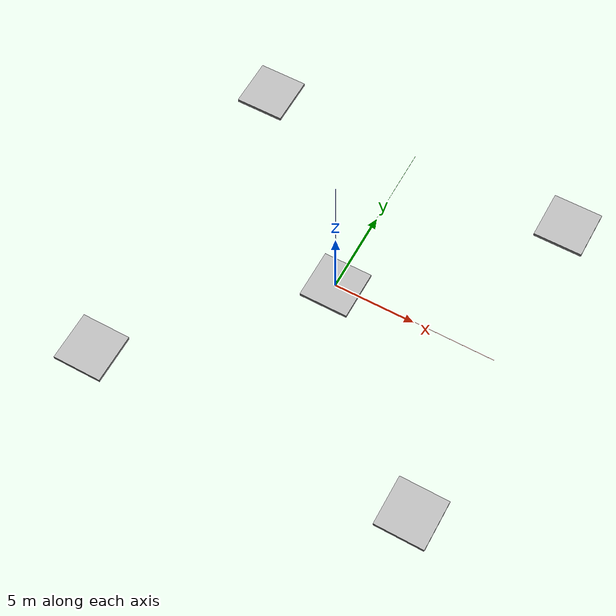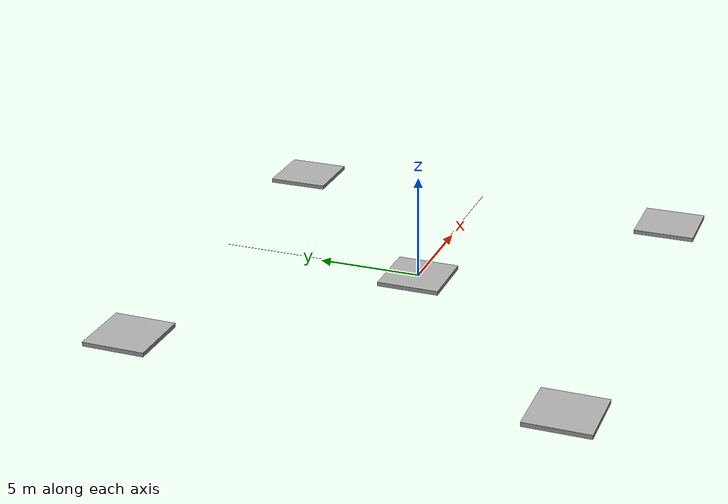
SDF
<sdf version="1.9">
 <world name="delivery_runway">
  <physics name="1ms" type="ignore">
   <max_step_size>0.001</max_step_size>
   <real_time_factor>1.0</real_time_factor>
  </physics>
  <plugin filename="gz-sim-physics-system" name="gz::sim::systems::Physics"/>
  <plugin filename="gz-sim-sensors-system" name="gz::sim::systems::Sensors">
   <render_engine>ogre2</render_engine>
  </plugin>
  <plugin filename="gz-sim-user-commands-system" name="gz::sim::systems::UserCommands"/>
  <plugin filename="gz-sim-scene-broadcaster-system" name="gz::sim::systems::SceneBroadcaster"/>
  <plugin filename="gz-sim-imu-system" name="gz::sim::systems::Imu"/>
  <plugin filename="gz-sim-navsat-system" name="gz::sim::systems::NavSat"/>
  <scene><ambient>1.0 1.0 1.0</ambient><background>0.8 0.8 0.8</background></scene>
  <spherical_coordinates>
   <latitude_deg>-35.363262</latitude_deg>
   <longitude_deg>149.165237</longitude_deg>
   <elevation>584</elevation>
   <heading_deg>0</heading_deg>
   <surface_model>EARTH_WGS84</surface_model>
  </spherical_coordinates>
  <light type="directional" name="sun">
   <pose>0 0 10 0 0 0</pose>
   <diffuse>0.8 0.8 0.8 1</diffuse>
   <specular>0.8 0.8 0.8 1</specular>
   <attenuation>
    <range>1000</range>
    <constant>0.9</constant>
    <linear>0.01</linear>
    <quadratic>0.001</quadratic>
   </attenuation>
   <direction>-0.5 0.1 -0.9</direction>
  </light>
  <model name="axes">
   <static>1</static>
   <link name="link">
    <visual name="r">
     <cast_shadows>0</cast_shadows>
     <pose>5 0 0.1 0 0 0</pose>
     <geometry><box><size>10 0.01 0.01</size></box></geometry>
     <material>
      <ambient>1 0 0 0.8</ambient>
      <diffuse>1 0 0 0.8</diffuse>
      <emissive>1 0 0 0.8</emissive>
      <specular>0.5 0.5 0.5 0.8</specular>
     </material>
    </visual>
    <visual name="g">
     <cast_shadows>0</cast_shadows>
     <pose>0 5 0.1 0 0 0</pose>
     <geometry><box><size>0.01 10 0.01</size></box></geometry>
     <material>
      <ambient>0 1 0 0.8</ambient>
      <diffuse>0 1 0 0.8</diffuse>
      <emissive>0 1 0 0.8</emissive>
      <specular>0.5 0.5 0.5 0.8</specular>
     </material>
    </visual>
    <visual name="b">
     <cast_shadows>0</cast_shadows>
     <pose>0 0 5.1 0 0 0</pose>
     <geometry><box><size>0.01 0.01 10</size></box></geometry>
     <material>
      <ambient>0 0 1 0.8</ambient>
      <diffuse>0 0 1 0.8</diffuse>
      <emissive>0 0 1 0.8</emissive>
      <specular>0.5 0.5 0.5 0.8</specular>
     </material>
    </visual>
    <sensor name="navsat_sensor" type="navsat"><always_on>1</always_on><update_rate>1</update_rate></sensor>
   </link>
  </model>
  <include><uri>model://box_with_image</uri><pose degrees="true">0 0 0 0 0 0</pose></include>
  <include><name>pad1</name><uri>model://box_with_image</uri><pose degrees="true">10 10 0 0 0 0</pose></include>
  <include>
   <name>pad2</name>
   <uri>model://box_with_image</uri>
   <pose degrees="true">-10 10 0 0 0 0</pose>
  </include>
  <include>
   <name>pad3</name>
   <uri>model://box_with_image</uri>
   <pose degrees="true">10 -10 0 0 0 0</pose>
  </include>
  <include>
   <name>pad4</name>
   <uri>model://box_with_image</uri>
   <pose degrees="true">-10 -10 0 0 0 0</pose>
  </include>
 </world>
</sdf>

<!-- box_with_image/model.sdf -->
<sdf version="1.9">
  <model name="box_with_image">
    <static>true</static>

    <link name="base_link">

      <visual name="box">
        <geometry>
          <box>
          <size>3 3 0.2</size>
          </box>
        </geometry>
        <material>
          <ambient>0.5 0.5 0.5 1</ambient>
          <diffuse>0.5 0.5 0.5 1</diffuse>
        </material>
      </visual>

      <visual name="image">
      <pose> 0 0 0.101 0 0 0</pose>
        <geometry>
          <box>
          <size>3 3 0.001</size>
          </box>
        </geometry>
        <material>
          <pbr>
            <metal>
              <albedo_map>materials/textures/logo.png</albedo_map>
            </metal>
          </pbr>
        </material>
      </visual>

      <collision name="base_collision">
        <geometry>
          <box>
          <size>1 1 0.201</size>
          </box>
        </geometry>
      </collision>

<!-- models/box_with_image/materials/textures/runway.png -->

    </link>
  </model>
</sdf>
